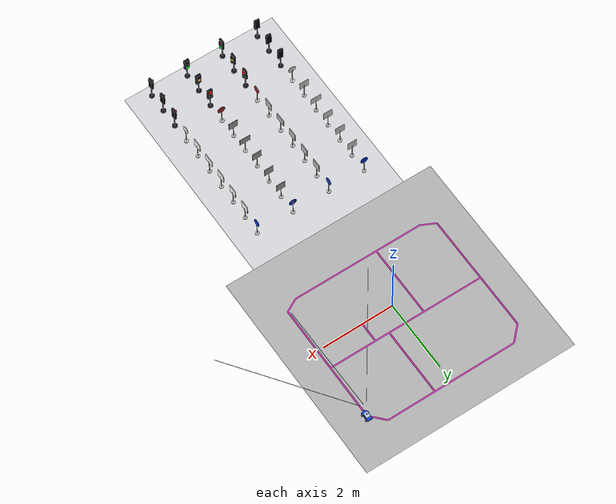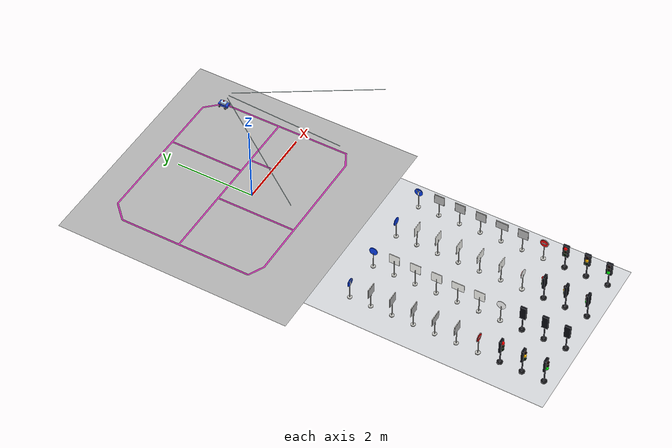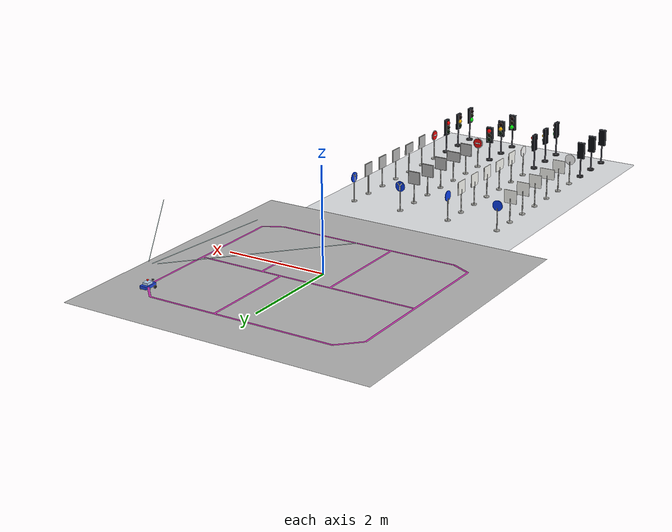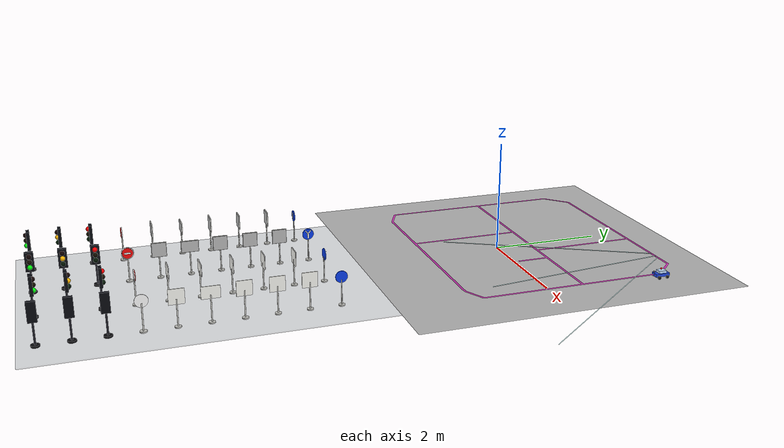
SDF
<?xml version='1.0' encoding='utf-8'?>
<sdf version="1.7">
  <world name="autonomous_map_3d_world">
    <plugin name="gazebo_ros_state" filename="libgazebo_ros_state.so">
      <update_rate>50.0</update_rate>
    </plugin>
    <scene>
      <ambient>0.82 0.82 0.82 1</ambient>
      <background>0.86 0.91 0.98 1</background>
      <shadows>0</shadows>
    </scene>
    <light name="sun" type="directional">
      <cast_shadows>1</cast_shadows>
      <pose>-0.000000 0.000000 10.000000 0.000000 -0.000000 3.141593</pose>
      <diffuse>0.8 0.8 0.8 1</diffuse>
      <specular>0.2 0.2 0.2 1</specular>
      <attenuation>
        <range>1000</range>
        <constant>0.9</constant>
        <linear>0.01</linear>
        <quadratic>0.001</quadratic>
      </attenuation>
      <direction>-0.5 0.1 -0.9</direction>
      <spot>
        <inner_angle>0</inner_angle>
        <outer_angle>0</outer_angle>
        <falloff>0</falloff>
      </spot>
    </light>
    <light name="key_light" type="directional">
      <cast_shadows>0</cast_shadows>
      <pose>-0.000000 0.000000 6.000000 0.000000 -0.000000 3.141593</pose>
      <diffuse>0.92 0.92 0.9 1</diffuse>
      <specular>0.15 0.15 0.15 1</specular>
      <direction>-0.3 0.35 -1</direction>
      <attenuation>
        <range>10</range>
      </attenuation>
      <spot>
        <inner_angle>0</inner_angle>
        <outer_angle>0</outer_angle>
        <falloff>0</falloff>
      </spot>
    </light>
    <light name="fill_light" type="directional">
      <cast_shadows>0</cast_shadows>
      <pose>-0.000000 0.000000 6.000000 0.000000 -0.000000 3.141593</pose>
      <diffuse>0.42 0.46 0.52 1</diffuse>
      <specular>0.05 0.05 0.05 1</specular>
      <direction>0.3 -0.2 -1</direction>
      <attenuation>
        <range>10</range>
      </attenuation>
      <spot>
        <inner_angle>0</inner_angle>
        <outer_angle>0</outer_angle>
        <falloff>0</falloff>
      </spot>
    </light>
    <model name="autonomous_map_3d_mirror_x">
      <static>1</static>
      <link name="map_link">
        <visual name="textured_map_visual">
          <geometry>
            <mesh>
              <uri>file:///home/quocbao/my_robot_vision_full_project/my_robot_vision/models/autonomous_map_3d_mirror_x/meshes/autonomous_map_3d_mirror_x.dae</uri>
            </mesh>
          </geometry>
        </visual>
        <collision name="floor_collision">
          <pose>0 0 -0.01 0 -0 0</pose>
          <geometry>
            <box>
              <size>6 6 0.02</size>
            </box>
          </geometry>
          <max_contacts>10</max_contacts>
          <surface>
            <contact>
              <ode />
            </contact>
            <bounce />
            <friction>
              <torsional>
                <ode />
              </torsional>
              <ode />
            </friction>
          </surface>
        </collision>
        <self_collide>0</self_collide>
        <enable_wind>0</enable_wind>
        <kinematic>0</kinematic>
      </link>
      <pose>0 0.3 0 0 -0 3.141593</pose>
    </model>
    <model name="flat_magenta_parking_stub_stop_route_overlay">
      <static>1</static>
      <link name="route_preview_link">
        <visual name="route_preview_mesh_visual">
          <geometry>
            <mesh>
              <uri>file:///home/quocbao/my_robot_vision_full_project/my_robot_vision/route_drawing_lab/outputs/session_20260608_132843/runtime_visual_frame_overlay/flat_magenta_parking_stub_stop_runtime_route_overlay.dae</uri>
            </mesh>
          </geometry>
          <material>
            <script>
              <name>Gazebo/RoutePreviewMagenta</name>
            </script>
            <ambient>1 0 1 1</ambient>
            <diffuse>1 0 1 1</diffuse>
            <emissive>0.8 0 0.8 1</emissive>
          </material>
          <cast_shadows>0</cast_shadows>
        </visual>
        <self_collide>0</self_collide>
        <enable_wind>0</enable_wind>
        <kinematic>1</kinematic>
      </link>
      <pose>0 0 0 0 0 0</pose>
    </model>
    <model name="sign_palette_floor_outside_map">
      <static>1</static>
      <link name="palette_floor_link">
        <visual name="palette_floor_visual">
          <geometry>
            <box>
              <size>4.400000 5.880000 0.020000</size>
            </box>
          </geometry>
          <material>
            <ambient>0.78 0.80 0.82 0.55</ambient>
            <diffuse>0.78 0.80 0.82 0.55</diffuse>
          </material>
        </visual>
        <collision name="palette_floor_collision">
          <geometry>
            <box>
              <size>4.400000 5.880000 0.020000</size>
            </box>
          </geometry>
        </collision>
      </link>
      <pose>0.000000 -5.615000 -0.020000 0.000000 0.000000 0.000000</pose>
    </model>
    <include>
      <name>palette_arrow_00_yaw_000</name>
      <uri>model://road_sign_arrow</uri>
      <pose>-1.575000 -3.500000 0.000000 0.000000 -0.000000 0.000000</pose>
    </include>
    <include>
      <name>palette_arrow_01_yaw_090</name>
      <uri>model://road_sign_arrow</uri>
      <pose>-0.525000 -3.500000 0.000000 0.000000 -0.000000 1.570796</pose>
    </include>
    <include>
      <name>palette_arrow_02_yaw_180</name>
      <uri>model://road_sign_arrow</uri>
      <pose>0.525000 -3.500000 0.000000 0.000000 -0.000000 3.141593</pose>
    </include>
    <include>
      <name>palette_arrow_03_yaw_270</name>
      <uri>model://road_sign_arrow</uri>
      <pose>1.575000 -3.500000 0.000000 0.000000 -0.000000 -1.570796</pose>
    </include>
    <include>
      <name>palette_go_straight_00_yaw_000</name>
      <uri>model://road_sign_go_straight</uri>
      <pose>-1.575000 -4.030000 0.000000 0.000000 -0.000000 0.000000</pose>
    </include>
    <include>
      <name>palette_go_straight_01_yaw_090</name>
      <uri>model://road_sign_go_straight</uri>
      <pose>-0.525000 -4.030000 0.000000 0.000000 -0.000000 1.570796</pose>
    </include>
    <include>
      <name>palette_go_straight_02_yaw_180</name>
      <uri>model://road_sign_go_straight</uri>
      <pose>0.525000 -4.030000 0.000000 0.000000 -0.000000 3.141593</pose>
    </include>
    <include>
      <name>palette_go_straight_03_yaw_270</name>
      <uri>model://road_sign_go_straight</uri>
      <pose>1.575000 -4.030000 0.000000 0.000000 -0.000000 -1.570796</pose>
    </include>
    <include>
      <name>palette_turn_left_00_yaw_000</name>
      <uri>model://road_sign_turn_left</uri>
      <pose>-1.575000 -4.560000 0.000000 0.000000 -0.000000 0.000000</pose>
    </include>
    <include>
      <name>palette_turn_left_01_yaw_090</name>
      <uri>model://road_sign_turn_left</uri>
      <pose>-0.525000 -4.560000 0.000000 0.000000 -0.000000 1.570796</pose>
    </include>
    <include>
      <name>palette_turn_left_02_yaw_180</name>
      <uri>model://road_sign_turn_left</uri>
      <pose>0.525000 -4.560000 0.000000 0.000000 -0.000000 3.141593</pose>
    </include>
    <include>
      <name>palette_turn_left_03_yaw_270</name>
      <uri>model://road_sign_turn_left</uri>
      <pose>1.575000 -4.560000 0.000000 0.000000 -0.000000 -1.570796</pose>
    </include>
    <include>
      <name>palette_turn_right_00_yaw_000</name>
      <uri>model://road_sign_turn_right</uri>
      <pose>-1.575000 -5.090000 0.000000 0.000000 -0.000000 0.000000</pose>
    </include>
    <include>
      <name>palette_turn_right_01_yaw_090</name>
      <uri>model://road_sign_turn_right</uri>
      <pose>-0.525000 -5.090000 0.000000 0.000000 -0.000000 1.570796</pose>
    </include>
    <include>
      <name>palette_turn_right_02_yaw_180</name>
      <uri>model://road_sign_turn_right</uri>
      <pose>0.525000 -5.090000 0.000000 0.000000 -0.000000 3.141593</pose>
    </include>
    <include>
      <name>palette_turn_right_03_yaw_270</name>
      <uri>model://road_sign_turn_right</uri>
      <pose>1.575000 -5.090000 0.000000 0.000000 -0.000000 -1.570796</pose>
    </include>
    <include>
      <name>palette_parking_00_yaw_000</name>
      <uri>model://road_sign_parking</uri>
      <pose>-1.575000 -5.620000 0.000000 0.000000 -0.000000 0.000000</pose>
    </include>
    <include>
      <name>palette_parking_01_yaw_090</name>
      <uri>model://road_sign_parking</uri>
      <pose>-0.525000 -5.620000 0.000000 0.000000 -0.000000 1.570796</pose>
    </include>
    <include>
      <name>palette_parking_02_yaw_180</name>
      <uri>model://road_sign_parking</uri>
      <pose>0.525000 -5.620000 0.000000 0.000000 -0.000000 3.141593</pose>
    </include>
    <include>
      <name>palette_parking_03_yaw_270</name>
      <uri>model://road_sign_parking</uri>
      <pose>1.575000 -5.620000 0.000000 0.000000 -0.000000 -1.570796</pose>
    </include>
    <include>
      <name>palette_speed_limit_00_yaw_000</name>
      <uri>model://road_sign_speed_limit</uri>
      <pose>-1.575000 -6.150000 0.000000 0.000000 -0.000000 0.000000</pose>
    </include>
    <include>
      <name>palette_speed_limit_01_yaw_090</name>
      <uri>model://road_sign_speed_limit</uri>
      <pose>-0.525000 -6.150000 0.000000 0.000000 -0.000000 1.570796</pose>
    </include>
    <include>
      <name>palette_speed_limit_02_yaw_180</name>
      <uri>model://road_sign_speed_limit</uri>
      <pose>0.525000 -6.150000 0.000000 0.000000 -0.000000 3.141593</pose>
    </include>
    <include>
      <name>palette_speed_limit_03_yaw_270</name>
      <uri>model://road_sign_speed_limit</uri>
      <pose>1.575000 -6.150000 0.000000 0.000000 -0.000000 -1.570796</pose>
    </include>
    <include>
      <name>palette_stop_00_yaw_000</name>
      <uri>model://road_sign_stop</uri>
      <pose>-1.575000 -6.680000 0.000000 0.000000 -0.000000 0.000000</pose>
    </include>
    <include>
      <name>palette_stop_01_yaw_090</name>
      <uri>model://road_sign_stop</uri>
      <pose>-0.525000 -6.680000 0.000000 0.000000 -0.000000 1.570796</pose>
    </include>
    <include>
      <name>palette_stop_02_yaw_180</name>
      <uri>model://road_sign_stop</uri>
      <pose>0.525000 -6.680000 0.000000 0.000000 -0.000000 3.141593</pose>
    </include>
    <include>
      <name>palette_stop_03_yaw_270</name>
      <uri>model://road_sign_stop</uri>
      <pose>1.575000 -6.680000 0.000000 0.000000 -0.000000 -1.570796</pose>
    </include>
    <include>
      <name>palette_traffic_light_red_00_yaw_000</name>
      <uri>model://traffic_light_toy_red</uri>
      <pose>-1.575000 -7.210000 0.000000 0.000000 -0.000000 0.000000</pose>
    </include>
    <include>
      <name>palette_traffic_light_red_01_yaw_090</name>
      <uri>model://traffic_light_toy_red</uri>
      <pose>-0.525000 -7.210000 0.000000 0.000000 -0.000000 1.570796</pose>
    </include>
    <include>
      <name>palette_traffic_light_red_02_yaw_180</name>
      <uri>model://traffic_light_toy_red</uri>
      <pose>0.525000 -7.210000 0.000000 0.000000 -0.000000 3.141593</pose>
    </include>
    <include>
      <name>palette_traffic_light_red_03_yaw_270</name>
      <uri>model://traffic_light_toy_red</uri>
      <pose>1.575000 -7.210000 0.000000 0.000000 -0.000000 -1.570796</pose>
    </include>
    <include>
      <name>palette_traffic_light_yellow_00_yaw_000</name>
      <uri>model://traffic_light_toy_yellow</uri>
      <pose>-1.575000 -7.740000 0.000000 0.000000 -0.000000 0.000000</pose>
    </include>
    <include>
      <name>palette_traffic_light_yellow_01_yaw_090</name>
      <uri>model://traffic_light_toy_yellow</uri>
      <pose>-0.525000 -7.740000 0.000000 0.000000 -0.000000 1.570796</pose>
    </include>
    <include>
      <name>palette_traffic_light_yellow_02_yaw_180</name>
      <uri>model://traffic_light_toy_yellow</uri>
      <pose>0.525000 -7.740000 0.000000 0.000000 -0.000000 3.141593</pose>
    </include>
    <include>
      <name>palette_traffic_light_yellow_03_yaw_270</name>
      <uri>model://traffic_light_toy_yellow</uri>
      <pose>1.575000 -7.740000 0.000000 0.000000 -0.000000 -1.570796</pose>
    </include>
    <include>
      <name>palette_traffic_light_green_00_yaw_000</name>
      <uri>model://traffic_light_toy_green</uri>
      <pose>-1.575000 -8.270000 0.000000 0.000000 -0.000000 0.000000</pose>
    </include>
    <include>
      <name>palette_traffic_light_green_01_yaw_090</name>
      <uri>model://traffic_light_toy_green</uri>
      <pose>-0.525000 -8.270000 0.000000 0.000000 -0.000000 1.570796</pose>
    </include>
    <include>
      <name>palette_traffic_light_green_02_yaw_180</name>
      <uri>model://traffic_light_toy_green</uri>
      <pose>0.525000 -8.270000 0.000000 0.000000 -0.000000 3.141593</pose>
    </include>
    <include>
      <name>palette_traffic_light_green_03_yaw_270</name>
      <uri>model://traffic_light_toy_green</uri>
      <pose>1.575000 -8.270000 0.000000 0.000000 -0.000000 -1.570796</pose>
    </include>
    <model name="track_preview_car">
      <static>0</static>
      <self_collide>0</self_collide>
      <allow_auto_disable>0</allow_auto_disable>
      <link name="body">
        <gravity>1</gravity>
        <inertial>
          <mass>1</mass>
          <inertia>
            <ixx>0.01</ixx>
            <iyy>0.01</iyy>
            <izz>0.01</izz>
            <ixy>0</ixy>
            <ixz>0</ixz>
            <iyz>0</iyz>
          </inertia>
          <pose>0 0 0 0 -0 0</pose>
        </inertial>
        <visual name="chassis_visual">
          <pose>0 0 0.065 0 -0 0</pose>
          <geometry>
            <box>
              <size>0.26 0.14 0.055</size>
            </box>
          </geometry>
          <material>
            <ambient>0.08 0.2 0.7 1</ambient>
            <diffuse>0.12 0.28 0.88 1</diffuse>
            <specular>0.1 0.1 0.1 1</specular>
          </material>
        </visual>
        <visual name="roof_visual">
          <pose>-0.005 0 0.115 0 -0 0</pose>
          <geometry>
            <box>
              <size>0.14 0.105 0.045</size>
            </box>
          </geometry>
          <material>
            <ambient>0.65 0.78 0.95 0.92</ambient>
            <diffuse>0.75 0.86 0.98 0.92</diffuse>
            <specular>0.1 0.1 0.1 1</specular>
          </material>
        </visual>
        <visual name="front_marker_visual">
          <pose>0.105 0 0.083 0 -0 0</pose>
          <geometry>
            <box>
              <size>0.025 0.075 0.018</size>
            </box>
          </geometry>
          <material>
            <ambient>1 0.85 0.2 1</ambient>
            <diffuse>1 0.88 0.25 1</diffuse>
            <specular>0.05 0.05 0.05 1</specular>
          </material>
        </visual>
        <visual name="camera_lens_visual">
          <pose>0.138 0 0.126 0 -0 0</pose>
          <geometry>
            <box>
              <size>0.016 0.04 0.022</size>
            </box>
          </geometry>
          <material>
            <ambient>0.02 0.02 0.025 1</ambient>
            <diffuse>0.04 0.04 0.05 1</diffuse>
            <specular>0.05 0.05 0.05 1</specular>
          </material>
        </visual>
        <visual name="camera_view_left_ray_visual">
          <pose>1.67 1.15 0.335 -0 0.0505 0.6109</pose>
          <geometry>
            <box>
              <size>3.68 0.008 0.008</size>
            </box>
          </geometry>
          <material>
            <ambient>0.85 1 1 0.82</ambient>
            <diffuse>0.85 1 1 0.82</diffuse>
            <emissive>0.2 0.55 0.75 1</emissive>
          </material>
        </visual>
        <visual name="camera_view_center_ray_visual">
          <pose>1.67 0 0.335 0 0.0555 0</pose>
          <geometry>
            <box>
              <size>3.0647 0.008 0.008</size>
            </box>
          </geometry>
          <material>
            <ambient>0.85 1 1 0.82</ambient>
            <diffuse>0.85 1 1 0.82</diffuse>
            <emissive>0.2 0.55 0.75 1</emissive>
          </material>
        </visual>
        <visual name="camera_view_right_ray_visual">
          <pose>1.67 -1.15 0.335 0 0.0505 -0.6109</pose>
          <geometry>
            <box>
              <size>3.68 0.008 0.008</size>
            </box>
          </geometry>
          <material>
            <ambient>0.85 1 1 0.82</ambient>
            <diffuse>0.85 1 1 0.82</diffuse>
            <emissive>0.2 0.55 0.75 1</emissive>
          </material>
        </visual>
        <visual name="debug_origin_marker_visual">
          <pose>0 0 0.165 0 -0 0</pose>
          <geometry>
            <sphere>
              <radius>0.018</radius>
            </sphere>
          </geometry>
          <material>
            <ambient>1 0.02 0.02 1</ambient>
            <diffuse>1 0.04 0.04 1</diffuse>
            <specular>0.08 0.08 0.08 1</specular>
          </material>
        </visual>
        <visual name="debug_ground_origin_visual">
          <pose>0 0 -0.017 0 -0 0</pose>
          <geometry>
            <cylinder>
              <radius>0.018</radius>
              <length>0.004</length>
            </cylinder>
          </geometry>
          <material>
            <ambient>1 0.02 0.02 1</ambient>
            <diffuse>1 0.04 0.04 1</diffuse>
            <specular>0.08 0.08 0.08 1</specular>
          </material>
        </visual>
        <visual name="debug_ground_footprint_front_visual">
          <pose>0.165 0 -0.017 0 -0 0</pose>
          <geometry>
            <box>
              <size>0.008 0.238 0.004</size>
            </box>
          </geometry>
          <material>
            <ambient>0 0.7 1 1</ambient>
            <diffuse>0.05 0.86 1 1</diffuse>
            <specular>0.02 0.02 0.02 1</specular>
          </material>
        </visual>
        <visual name="debug_ground_footprint_rear_visual">
          <pose>-0.145 0 -0.017 0 -0 0</pose>
          <geometry>
            <box>
              <size>0.008 0.238 0.004</size>
            </box>
          </geometry>
          <material>
            <ambient>0 0.7 1 1</ambient>
            <diffuse>0.05 0.86 1 1</diffuse>
            <specular>0.02 0.02 0.02 1</specular>
          </material>
        </visual>
        <visual name="debug_ground_footprint_left_visual">
          <pose>0.01 0.115 -0.017 0 -0 0</pose>
          <geometry>
            <box>
              <size>0.318 0.008 0.004</size>
            </box>
          </geometry>
          <material>
            <ambient>0 0.7 1 1</ambient>
            <diffuse>0.05 0.86 1 1</diffuse>
            <specular>0.02 0.02 0.02 1</specular>
          </material>
        </visual>
        <visual name="debug_ground_footprint_right_visual">
          <pose>0.01 -0.115 -0.017 0 -0 0</pose>
          <geometry>
            <box>
              <size>0.318 0.008 0.004</size>
            </box>
          </geometry>
          <material>
            <ambient>0 0.7 1 1</ambient>
            <diffuse>0.05 0.86 1 1</diffuse>
            <specular>0.02 0.02 0.02 1</specular>
          </material>
        </visual>
        <visual name="rear_left_dummy_wheel_visual">
          <pose>-0.08 0.085 0.032 1.5708 -0 0</pose>
          <geometry>
            <cylinder>
              <radius>0.028</radius>
              <length>0.016</length>
            </cylinder>
          </geometry>
          <material>
            <ambient>0.03 0.03 0.03 1</ambient>
            <diffuse>0.07 0.07 0.07 1</diffuse>
            <specular>0.02 0.02 0.02 1</specular>
          </material>
        </visual>
        <visual name="rear_right_dummy_wheel_visual">
          <pose>-0.08 -0.085 0.032 1.5708 -0 0</pose>
          <geometry>
            <cylinder>
              <radius>0.028</radius>
              <length>0.016</length>
            </cylinder>
          </geometry>
          <material>
            <ambient>0.03 0.03 0.03 1</ambient>
            <diffuse>0.07 0.07 0.07 1</diffuse>
            <specular>0.02 0.02 0.02 1</specular>
          </material>
        </visual>
        <collision name="rear_left_caster_collision">
          <pose>-0.095 0.072 0.026 0 -0 0</pose>
          <geometry>
            <sphere>
              <radius>0.024</radius>
            </sphere>
          </geometry>
          <surface>
            <friction>
              <ode>
                <mu>0.05</mu>
                <mu2>0.05</mu2>
              </ode>
              <torsional>
                <ode />
              </torsional>
            </friction>
            <contact>
              <ode />
            </contact>
            <bounce />
          </surface>
          <max_contacts>10</max_contacts>
        </collision>
        <collision name="rear_right_caster_collision">
          <pose>-0.095 -0.072 0.026 0 -0 0</pose>
          <geometry>
            <sphere>
              <radius>0.024</radius>
            </sphere>
          </geometry>
          <surface>
            <friction>
              <ode>
                <mu>0.05</mu>
                <mu2>0.05</mu2>
              </ode>
              <torsional>
                <ode />
              </torsional>
            </friction>
            <contact>
              <ode />
            </contact>
            <bounce />
          </surface>
          <max_contacts>10</max_contacts>
        </collision>
        <collision name="body_collision">
          <pose>0 0 0.065 0 -0 0</pose>
          <geometry>
            <box>
              <size>0.26 0.14 0.05</size>
            </box>
          </geometry>
          <max_contacts>10</max_contacts>
          <surface>
            <contact>
              <ode />
            </contact>
            <bounce />
            <friction>
              <torsional>
                <ode />
              </torsional>
              <ode />
            </friction>
          </surface>
        </collision>
        <sensor name="front_camera" type="camera">
          <pose>0.14 0 0.42 0 0.18 0</pose>
          <always_on>1</always_on>
          <update_rate>30</update_rate>
          <visualize>0</visualize>
          <camera>
            <horizontal_fov>2.45</horizontal_fov>
            <image>
              <width>960</width>
              <height>540</height>
              <format>R8G8B8</format>
            </image>
            <clip>
              <near>0.02</near>
              <far>6</far>
            </clip>
          </camera>
          <plugin name="front_camera_controller" filename="libgazebo_ros_camera.so">
            <ros>
              <namespace>/track_preview_car</namespace>
              <remapping>image_raw:=image_raw</remapping>
              <remapping>camera_info:=camera_info</remapping>
            </ros>
            <camera_name>camera</camera_name>
            <frame_name>track_preview_car/front_camera</frame_name>
          </plugin>
        </sensor>
        <self_collide>0</self_collide>
        <enable_wind>0</enable_wind>
        <kinematic>0</kinematic>
      </link>
      <link name="left_wheel">
        <gravity>1</gravity>
        <pose>0.08 0.088 0.032 0 -0 0</pose>
        <inertial>
          <mass>0.08</mass>
          <inertia>
            <ixx>5e-05</ixx>
            <iyy>8e-05</iyy>
            <izz>5e-05</izz>
            <ixy>0</ixy>
            <ixz>0</ixz>
            <iyz>0</iyz>
          </inertia>
          <pose>0 0 0 0 -0 0</pose>
        </inertial>
        <visual name="left_wheel_visual">
          <pose>0 0 0 1.5708 -0 0</pose>
          <geometry>
            <cylinder>
              <radius>0.03</radius>
              <length>0.02</length>
            </cylinder>
          </geometry>
          <material>
            <ambient>0.03 0.03 0.03 1</ambient>
            <diffuse>0.07 0.07 0.07 1</diffuse>
            <specular>0.02 0.02 0.02 1</specular>
          </material>
        </visual>
        <collision name="left_wheel_collision">
          <pose>0 0 0 1.5708 -0 0</pose>
          <geometry>
            <cylinder>
              <radius>0.03</radius>
              <length>0.02</length>
            </cylinder>
          </geometry>
          <surface>
            <friction>
              <ode>
                <mu>1.2</mu>
                <mu2>1.2</mu2>
              </ode>
              <torsional>
                <ode />
              </torsional>
            </friction>
            <contact>
              <ode />
            </contact>
            <bounce />
          </surface>
          <max_contacts>10</max_contacts>
        </collision>
        <self_collide>0</self_collide>
        <enable_wind>0</enable_wind>
        <kinematic>0</kinematic>
      </link>
      <link name="right_wheel">
        <gravity>1</gravity>
        <pose>0.08 -0.088 0.032 0 -0 0</pose>
        <inertial>
          <mass>0.08</mass>
          <inertia>
            <ixx>5e-05</ixx>
            <iyy>8e-05</iyy>
            <izz>5e-05</izz>
            <ixy>0</ixy>
            <ixz>0</ixz>
            <iyz>0</iyz>
          </inertia>
          <pose>0 0 0 0 -0 0</pose>
        </inertial>
        <visual name="right_wheel_visual">
          <pose>0 0 0 1.5708 -0 0</pose>
          <geometry>
            <cylinder>
              <radius>0.03</radius>
              <length>0.02</length>
            </cylinder>
          </geometry>
          <material>
            <ambient>0.03 0.03 0.03 1</ambient>
            <diffuse>0.07 0.07 0.07 1</diffuse>
            <specular>0.02 0.02 0.02 1</specular>
          </material>
        </visual>
        <collision name="right_wheel_collision">
          <pose>0 0 0 1.5708 -0 0</pose>
          <geometry>
            <cylinder>
              <radius>0.03</radius>
              <length>0.02</length>
            </cylinder>
          </geometry>
          <surface>
            <friction>
              <ode>
                <mu>1.2</mu>
                <mu2>1.2</mu2>
              </ode>
              <torsional>
                <ode />
              </torsional>
            </friction>
            <contact>
              <ode />
            </contact>
            <bounce />
          </surface>
          <max_contacts>10</max_contacts>
        </collision>
        <self_collide>0</self_collide>
        <enable_wind>0</enable_wind>
        <kinematic>0</kinematic>
      </link>
      <joint name="left_wheel_joint" type="revolute">
        <parent>body</parent>
        <child>left_wheel</child>
        <axis>
          <xyz>0 1 0</xyz>
          <limit>
            <lower>-1e+16</lower>
            <upper>1e+16</upper>
          </limit>
          <dynamics>
            <spring_reference>0</spring_reference>
            <spring_stiffness>0</spring_stiffness>
          </dynamics>
        </axis>
      </joint>
      <joint name="right_wheel_joint" type="revolute">
        <parent>body</parent>
        <child>right_wheel</child>
        <axis>
          <xyz>0 1 0</xyz>
          <limit>
            <lower>-1e+16</lower>
            <upper>1e+16</upper>
          </limit>
          <dynamics>
            <spring_reference>0</spring_reference>
            <spring_stiffness>0</spring_stiffness>
          </dynamics>
        </axis>
      </joint>
      <plugin name="track_preview_car_diff_drive" filename="libgazebo_ros_diff_drive.so">
        <ros>
          <namespace>/track_preview_car</namespace>
          <remapping>cmd_vel:=cmd_vel</remapping>
          <remapping>odom:=odom</remapping>
        </ros>
        <left_joint>left_wheel_joint</left_joint>
        <right_joint>right_wheel_joint</right_joint>
        <wheel_separation>0.176</wheel_separation>
        <wheel_diameter>0.06</wheel_diameter>
        <max_wheel_torque>2.0</max_wheel_torque>
        <max_wheel_acceleration>8.0</max_wheel_acceleration>
        <odometry_frame>odom</odometry_frame>
        <robot_base_frame>body</robot_base_frame>
        <publish_odom>1</publish_odom>
        <publish_odom_tf>0</publish_odom_tf>
        <publish_wheel_tf>0</publish_wheel_tf>
        <update_rate>50</update_rate>
      </plugin>
      <pose>2.179688 2.104687 -0.002000 0.000000 -0.000000 -1.570796</pose>
    </model>
    <physics name="default_physics" default="1" type="ode">
      <max_step_size>0.001</max_step_size>
      <real_time_update_rate>1000</real_time_update_rate>
      <real_time_factor>1</real_time_factor>
    </physics>
    <gui fullscreen="0">
      <camera name="user_camera">
        <pose>0.550000 -7.250000 6.700000 0.000000 0.720000 1.570796</pose>
        <view_controller>orbit</view_controller>
        <projection_type>perspective</projection_type>
      </camera>
    </gui>
    <gravity>0 0 -9.8</gravity>
    <magnetic_field>6e-06 2.3e-05 -4.2e-05</magnetic_field>
    <atmosphere type="adiabatic" />
    <wind />
    <spherical_coordinates>
      <surface_model>EARTH_WGS84</surface_model>
      <latitude_deg>0</latitude_deg>
      <longitude_deg>0</longitude_deg>
      <elevation>0</elevation>
      <heading_deg>0</heading_deg>
    </spherical_coordinates>
  </world>
</sdf>

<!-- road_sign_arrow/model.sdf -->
<sdf version="1.6">
  <model name="road_sign_arrow">
    <static>true</static>
    <link name="arrow_sign_link">
      <visual name="base_visual">
        <pose>0 0 0.010 0 0 0</pose>
        <geometry>
          <cylinder>
            <radius>0.055</radius>
            <length>0.020</length>
          </cylinder>
        </geometry>
        <material>
          <ambient>0.72 0.72 0.70 1</ambient>
          <diffuse>0.78 0.78 0.76 1</diffuse>
        </material>
      </visual>
      <visual name="pole_visual">
        <pose>0 0 0.230 0 0 0</pose>
        <geometry>
          <cylinder>
            <radius>0.010</radius>
            <length>0.440</length>
          </cylinder>
        </geometry>
        <material>
          <ambient>0.72 0.72 0.70 1</ambient>
          <diffuse>0.82 0.82 0.80 1</diffuse>
        </material>
      </visual>
      <visual name="blue_plate_visual">
        <pose>0 -0.004 0.500 1.5708 0 0</pose>
        <geometry>
          <cylinder>
            <radius>0.102</radius>
            <length>0.014</length>
          </cylinder>
        </geometry>
        <material>
          <ambient>0.02 0.18 0.68 1</ambient>
          <diffuse>0.03 0.24 0.92 1</diffuse>
        </material>
      </visual>
      <visual name="arrow_stem_visual">
        <pose>0 -0.018 0.475 0 0 0</pose>
        <geometry>
          <box>
            <size>0.030 0.006 0.105</size>
          </box>
        </geometry>
        <material>
          <ambient>1.0 1.0 1.0 1</ambient>
          <diffuse>1.0 1.0 1.0 1</diffuse>
        </material>
      </visual>
      <visual name="arrow_head_left_visual">
        <pose>-0.028 -0.020 0.545 0 -0.75 0</pose>
        <geometry>
          <box>
            <size>0.020 0.006 0.075</size>
          </box>
        </geometry>
        <material>
          <ambient>1.0 1.0 1.0 1</ambient>
          <diffuse>1.0 1.0 1.0 1</diffuse>
        </material>
      </visual>
      <visual name="arrow_head_right_visual">
        <pose>0.028 -0.020 0.545 0 0.75 0</pose>
        <geometry>
          <box>
            <size>0.020 0.006 0.075</size>
          </box>
        </geometry>
        <material>
          <ambient>1.0 1.0 1.0 1</ambient>
          <diffuse>1.0 1.0 1.0 1</diffuse>
        </material>
      </visual>
    </link>
  </model>
</sdf>

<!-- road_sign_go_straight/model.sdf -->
<sdf version="1.6">
  <model name="road_sign_go_straight">
    <static>true</static>
    <link name="sign_link">
      <visual name="base_visual">
        <pose>0 0 0.010 0 0 0</pose>
        <geometry>
          <cylinder>
            <radius>0.055</radius>
            <length>0.020</length>
          </cylinder>
        </geometry>
        <material>
          <ambient>0.72 0.72 0.70 1</ambient>
          <diffuse>0.78 0.78 0.76 1</diffuse>
        </material>
      </visual>
      <visual name="pole_visual">
        <pose>0 0 0.245 0 0 0</pose>
        <geometry>
          <cylinder>
            <radius>0.011</radius>
            <length>0.470</length>
          </cylinder>
        </geometry>
        <material>
          <ambient>0.72 0.72 0.70 1</ambient>
          <diffuse>0.82 0.82 0.80 1</diffuse>
        </material>
      </visual>
      <visual name="back_plate_visual">
        <pose>0 0 0.520 0 0 0</pose>
        <geometry>
          <box>
            <size>0.260 0.014 0.260</size>
          </box>
        </geometry>
        <material>
          <ambient>0.96 0.96 0.94 1</ambient>
          <diffuse>0.98 0.98 0.96 1</diffuse>
        </material>
      </visual>
      <visual name="sign_face_visual">
        <pose>0 -0.011 0.520 0 0 0</pose>
        <geometry>
          <box>
            <size>0.246 0.004 0.246</size>
          </box>
        </geometry>
        <material>
          <script>
            <uri>model://road_sign_go_straight/materials/scripts</uri>
            <uri>model://road_sign_go_straight/materials/textures</uri>
            <name>RoadSign/GoStraight</name>
          </script>
        </material>
      </visual>
    </link>
  </model>
</sdf>

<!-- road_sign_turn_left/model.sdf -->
<sdf version="1.6">
  <model name="road_sign_turn_left">
    <static>true</static>
    <link name="sign_link">
      <visual name="base_visual">
        <pose>0 0 0.010 0 0 0</pose>
        <geometry>
          <cylinder>
            <radius>0.055</radius>
            <length>0.020</length>
          </cylinder>
        </geometry>
        <material>
          <ambient>0.72 0.72 0.70 1</ambient>
          <diffuse>0.78 0.78 0.76 1</diffuse>
        </material>
      </visual>
      <visual name="pole_visual">
        <pose>0 0 0.245 0 0 0</pose>
        <geometry>
          <cylinder>
            <radius>0.011</radius>
            <length>0.470</length>
          </cylinder>
        </geometry>
        <material>
          <ambient>0.72 0.72 0.70 1</ambient>
          <diffuse>0.82 0.82 0.80 1</diffuse>
        </material>
      </visual>
      <visual name="back_plate_visual">
        <pose>0 0 0.520 0 0 0</pose>
        <geometry>
          <box>
            <size>0.260 0.014 0.260</size>
          </box>
        </geometry>
        <material>
          <ambient>0.96 0.96 0.94 1</ambient>
          <diffuse>0.98 0.98 0.96 1</diffuse>
        </material>
      </visual>
      <visual name="sign_face_visual">
        <pose>0 -0.011 0.520 0 0 0</pose>
        <geometry>
          <box>
            <size>0.246 0.004 0.246</size>
          </box>
        </geometry>
        <material>
          <script>
            <uri>model://road_sign_turn_left/materials/scripts</uri>
            <uri>model://road_sign_turn_left/materials/textures</uri>
            <name>RoadSign/TurnLeft</name>
          </script>
        </material>
      </visual>
    </link>
  </model>
</sdf>

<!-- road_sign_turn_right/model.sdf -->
<sdf version="1.6">
  <model name="road_sign_turn_right">
    <static>true</static>
    <link name="sign_link">
      <visual name="base_visual">
        <pose>0 0 0.010 0 0 0</pose>
        <geometry>
          <cylinder>
            <radius>0.055</radius>
            <length>0.020</length>
          </cylinder>
        </geometry>
        <material>
          <ambient>0.72 0.72 0.70 1</ambient>
          <diffuse>0.78 0.78 0.76 1</diffuse>
        </material>
      </visual>
      <visual name="pole_visual">
        <pose>0 0 0.245 0 0 0</pose>
        <geometry>
          <cylinder>
            <radius>0.011</radius>
            <length>0.470</length>
          </cylinder>
        </geometry>
        <material>
          <ambient>0.72 0.72 0.70 1</ambient>
          <diffuse>0.82 0.82 0.80 1</diffuse>
        </material>
      </visual>
      <visual name="back_plate_visual">
        <pose>0 0 0.520 0 0 0</pose>
        <geometry>
          <box>
            <size>0.260 0.014 0.260</size>
          </box>
        </geometry>
        <material>
          <ambient>0.96 0.96 0.94 1</ambient>
          <diffuse>0.98 0.98 0.96 1</diffuse>
        </material>
      </visual>
      <visual name="sign_face_visual">
        <pose>0 -0.011 0.520 0 0 0</pose>
        <geometry>
          <box>
            <size>0.246 0.004 0.246</size>
          </box>
        </geometry>
        <material>
          <script>
            <uri>model://road_sign_turn_right/materials/scripts</uri>
            <uri>model://road_sign_turn_right/materials/textures</uri>
            <name>RoadSign/TurnRight</name>
          </script>
        </material>
      </visual>
    </link>
  </model>
</sdf>

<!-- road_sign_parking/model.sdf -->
<sdf version="1.6">
  <model name="road_sign_parking">
    <static>true</static>
    <link name="sign_link">
      <visual name="base_visual">
        <pose>0 0 0.010 0 0 0</pose>
        <geometry>
          <cylinder>
            <radius>0.055</radius>
            <length>0.020</length>
          </cylinder>
        </geometry>
        <material>
          <ambient>0.72 0.72 0.70 1</ambient>
          <diffuse>0.78 0.78 0.76 1</diffuse>
        </material>
      </visual>
      <visual name="pole_visual">
        <pose>0 0 0.245 0 0 0</pose>
        <geometry>
          <cylinder>
            <radius>0.011</radius>
            <length>0.470</length>
          </cylinder>
        </geometry>
        <material>
          <ambient>0.72 0.72 0.70 1</ambient>
          <diffuse>0.82 0.82 0.80 1</diffuse>
        </material>
      </visual>
      <visual name="back_plate_visual">
        <pose>0 0 0.520 0 0 0</pose>
        <geometry>
          <box>
            <size>0.310 0.014 0.210</size>
          </box>
        </geometry>
        <material>
          <ambient>0.96 0.96 0.94 1</ambient>
          <diffuse>0.98 0.98 0.96 1</diffuse>
        </material>
      </visual>
      <visual name="sign_face_visual">
        <pose>0 -0.011 0.520 0 0 0</pose>
        <geometry>
          <box>
            <size>0.294 0.004 0.196</size>
          </box>
        </geometry>
        <material>
          <script>
            <uri>model://road_sign_parking/materials/scripts</uri>
            <uri>model://road_sign_parking/materials/textures</uri>
            <name>RoadSign/Parking</name>
          </script>
        </material>
      </visual>
    </link>
  </model>
</sdf>

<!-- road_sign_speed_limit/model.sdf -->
<sdf version="1.6">
  <model name="road_sign_speed_limit">
    <static>true</static>
    <link name="sign_link">
      <visual name="base_visual">
        <pose>0 0 0.010 0 0 0</pose>
        <geometry>
          <cylinder>
            <radius>0.055</radius>
            <length>0.020</length>
          </cylinder>
        </geometry>
        <material>
          <ambient>0.72 0.72 0.70 1</ambient>
          <diffuse>0.78 0.78 0.76 1</diffuse>
        </material>
      </visual>
      <visual name="pole_visual">
        <pose>0 0 0.245 0 0 0</pose>
        <geometry>
          <cylinder>
            <radius>0.011</radius>
            <length>0.470</length>
          </cylinder>
        </geometry>
        <material>
          <ambient>0.72 0.72 0.70 1</ambient>
          <diffuse>0.82 0.82 0.80 1</diffuse>
        </material>
      </visual>
      <visual name="back_plate_visual">
        <pose>0 0 0.520 0 0 0</pose>
        <geometry>
          <box>
            <size>0.260 0.014 0.260</size>
          </box>
        </geometry>
        <material>
          <ambient>0.96 0.96 0.94 1</ambient>
          <diffuse>0.98 0.98 0.96 1</diffuse>
        </material>
      </visual>
      <visual name="sign_face_visual">
        <pose>0 -0.011 0.520 0 0 0</pose>
        <geometry>
          <box>
            <size>0.246 0.004 0.246</size>
          </box>
        </geometry>
        <material>
          <script>
            <uri>model://road_sign_speed_limit/materials/scripts</uri>
            <uri>model://road_sign_speed_limit/materials/textures</uri>
            <name>RoadSign/SpeedLimit</name>
          </script>
        </material>
      </visual>
    </link>
  </model>
</sdf>

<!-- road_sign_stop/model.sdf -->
<sdf version="1.6">
  <model name="road_sign_stop">
    <static>true</static>
    <link name="stop_sign_link">
      <visual name="base_visual">
        <pose>0 0 0.010 0 0 0</pose>
        <geometry>
          <cylinder>
            <radius>0.060</radius>
            <length>0.020</length>
          </cylinder>
        </geometry>
        <material>
          <ambient>0.72 0.72 0.70 1</ambient>
          <diffuse>0.78 0.78 0.76 1</diffuse>
        </material>
      </visual>
      <visual name="pole_visual">
        <pose>0 0 0.245 0 0 0</pose>
        <geometry>
          <cylinder>
            <radius>0.011</radius>
            <length>0.470</length>
          </cylinder>
        </geometry>
        <material>
          <ambient>0.72 0.72 0.70 1</ambient>
          <diffuse>0.82 0.82 0.80 1</diffuse>
        </material>
      </visual>
      <visual name="white_back_plate_visual">
        <pose>0 -0.002 0.520 1.5708 0 0</pose>
        <geometry>
          <cylinder>
            <radius>0.108</radius>
            <length>0.012</length>
          </cylinder>
        </geometry>
        <material>
          <ambient>1.0 1.0 1.0 1</ambient>
          <diffuse>1.0 1.0 1.0 1</diffuse>
        </material>
      </visual>
      <visual name="red_plate_visual">
        <pose>0 -0.010 0.520 1.5708 0 0</pose>
        <geometry>
          <cylinder>
            <radius>0.094</radius>
            <length>0.014</length>
          </cylinder>
        </geometry>
        <material>
          <ambient>0.72 0.02 0.02 1</ambient>
          <diffuse>0.95 0.04 0.04 1</diffuse>
        </material>
      </visual>
      <visual name="stop_bar_visual">
        <pose>0 -0.020 0.520 0 0 0</pose>
        <geometry>
          <box>
            <size>0.110 0.006 0.028</size>
          </box>
        </geometry>
        <material>
          <ambient>1.0 1.0 1.0 1</ambient>
          <diffuse>1.0 1.0 1.0 1</diffuse>
        </material>
      </visual>
    </link>
  </model>
</sdf>

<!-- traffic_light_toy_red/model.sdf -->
<sdf version="1.6">
  <model name="traffic_light_toy_red">
    <static>true</static>
    <link name="traffic_light_link">
      <visual name="base_visual">
        <pose>0 0 0.015 0 0 0</pose>
        <geometry>
          <cylinder>
            <radius>0.070</radius>
            <length>0.030</length>
          </cylinder>
        </geometry>
        <material>
          <ambient>0.03 0.03 0.04 1</ambient>
          <diffuse>0.04 0.04 0.05 1</diffuse>
        </material>
      </visual>
      <visual name="pole_visual">
        <pose>0 0 0.250 0 0 0</pose>
        <geometry>
          <cylinder>
            <radius>0.016</radius>
            <length>0.470</length>
          </cylinder>
        </geometry>
        <material>
          <ambient>0.08 0.08 0.10 1</ambient>
          <diffuse>0.10 0.10 0.13 1</diffuse>
        </material>
      </visual>
      <visual name="housing_visual">
        <pose>0 -0.006 0.565 0 0 0</pose>
        <geometry>
          <box>
            <size>0.145 0.055 0.340</size>
          </box>
        </geometry>
        <material>
          <ambient>0.02 0.025 0.04 1</ambient>
          <diffuse>0.03 0.035 0.06 1</diffuse>
        </material>
      </visual>
      <visual name="red_lens_visual">
        <pose>0 -0.038 0.660 0 0 0</pose>
        <geometry>
          <sphere>
            <radius>0.043</radius>
          </sphere>
        </geometry>
        <material>
          <ambient>1.0 0.0 0.0 1</ambient>
          <diffuse>1.0 0.0 0.0 1</diffuse>
          <emissive>8.0 0.0 0.0 1</emissive>
        </material>
      </visual>
      <visual name="yellow_lens_visual">
        <pose>0 -0.038 0.565 0 0 0</pose>
        <geometry>
          <sphere>
            <radius>0.043</radius>
          </sphere>
        </geometry>
        <material>
          <ambient>0.035 0.025 0.002 1</ambient>
          <diffuse>0.060 0.045 0.004 1</diffuse>
          <emissive>0.00 0.00 0.00 1</emissive>
        </material>
      </visual>
      <visual name="green_lens_visual">
        <pose>0 -0.038 0.470 0 0 0</pose>
        <geometry>
          <sphere>
            <radius>0.043</radius>
          </sphere>
        </geometry>
        <material>
          <ambient>0.002 0.040 0.004 1</ambient>
          <diffuse>0.004 0.078 0.010 1</diffuse>
          <emissive>0.00 0.00 0.00 1</emissive>
        </material>
      </visual>
    </link>
  </model>
</sdf>

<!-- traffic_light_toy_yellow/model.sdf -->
<sdf version="1.6">
  <model name="traffic_light_toy_yellow">
    <static>true</static>
    <link name="traffic_light_link">
      <visual name="base_visual">
        <pose>0 0 0.015 0 0 0</pose>
        <geometry>
          <cylinder>
            <radius>0.070</radius>
            <length>0.030</length>
          </cylinder>
        </geometry>
        <material>
          <ambient>0.03 0.03 0.04 1</ambient>
          <diffuse>0.04 0.04 0.05 1</diffuse>
        </material>
      </visual>
      <visual name="pole_visual">
        <pose>0 0 0.250 0 0 0</pose>
        <geometry>
          <cylinder>
            <radius>0.016</radius>
            <length>0.470</length>
          </cylinder>
        </geometry>
        <material>
          <ambient>0.08 0.08 0.10 1</ambient>
          <diffuse>0.10 0.10 0.13 1</diffuse>
        </material>
      </visual>
      <visual name="housing_visual">
        <pose>0 -0.006 0.565 0 0 0</pose>
        <geometry>
          <box>
            <size>0.145 0.055 0.340</size>
          </box>
        </geometry>
        <material>
          <ambient>0.02 0.025 0.04 1</ambient>
          <diffuse>0.03 0.035 0.06 1</diffuse>
        </material>
      </visual>
      <visual name="red_lens_visual">
        <pose>0 -0.038 0.660 0 0 0</pose>
        <geometry>
          <sphere>
            <radius>0.043</radius>
          </sphere>
        </geometry>
        <material>
          <ambient>0.035 0.002 0.002 1</ambient>
          <diffuse>0.060 0.004 0.004 1</diffuse>
          <emissive>0.00 0.00 0.00 1</emissive>
        </material>
      </visual>
      <visual name="yellow_lens_visual">
        <pose>0 -0.038 0.565 0 0 0</pose>
        <geometry>
          <sphere>
            <radius>0.043</radius>
          </sphere>
        </geometry>
        <material>
          <ambient>1.0 0.72 0.0 1</ambient>
          <diffuse>1.0 0.72 0.0 1</diffuse>
          <emissive>8.0 5.2 0.0 1</emissive>
        </material>
      </visual>
      <visual name="green_lens_visual">
        <pose>0 -0.038 0.470 0 0 0</pose>
        <geometry>
          <sphere>
            <radius>0.043</radius>
          </sphere>
        </geometry>
        <material>
          <ambient>0.002 0.040 0.004 1</ambient>
          <diffuse>0.004 0.078 0.010 1</diffuse>
          <emissive>0.00 0.00 0.00 1</emissive>
        </material>
      </visual>
    </link>
  </model>
</sdf>

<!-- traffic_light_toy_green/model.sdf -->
<sdf version="1.6">
  <model name="traffic_light_toy_green">
    <static>true</static>
    <link name="traffic_light_link">
      <visual name="base_visual">
        <pose>0 0 0.015 0 0 0</pose>
        <geometry>
          <cylinder>
            <radius>0.070</radius>
            <length>0.030</length>
          </cylinder>
        </geometry>
        <material>
          <ambient>0.03 0.03 0.04 1</ambient>
          <diffuse>0.04 0.04 0.05 1</diffuse>
        </material>
      </visual>
      <visual name="pole_visual">
        <pose>0 0 0.250 0 0 0</pose>
        <geometry>
          <cylinder>
            <radius>0.016</radius>
            <length>0.470</length>
          </cylinder>
        </geometry>
        <material>
          <ambient>0.08 0.08 0.10 1</ambient>
          <diffuse>0.10 0.10 0.13 1</diffuse>
        </material>
      </visual>
      <visual name="housing_visual">
        <pose>0 -0.006 0.565 0 0 0</pose>
        <geometry>
          <box>
            <size>0.145 0.055 0.340</size>
          </box>
        </geometry>
        <material>
          <ambient>0.02 0.025 0.04 1</ambient>
          <diffuse>0.03 0.035 0.06 1</diffuse>
        </material>
      </visual>
      <visual name="red_lens_visual">
        <pose>0 -0.038 0.660 0 0 0</pose>
        <geometry>
          <sphere>
            <radius>0.043</radius>
          </sphere>
        </geometry>
        <material>
          <ambient>0.035 0.002 0.002 1</ambient>
          <diffuse>0.060 0.004 0.004 1</diffuse>
          <emissive>0.00 0.00 0.00 1</emissive>
        </material>
      </visual>
      <visual name="yellow_lens_visual">
        <pose>0 -0.038 0.565 0 0 0</pose>
        <geometry>
          <sphere>
            <radius>0.043</radius>
          </sphere>
        </geometry>
        <material>
          <ambient>0.035 0.025 0.002 1</ambient>
          <diffuse>0.060 0.045 0.004 1</diffuse>
          <emissive>0.00 0.00 0.00 1</emissive>
        </material>
      </visual>
      <visual name="green_lens_visual">
        <pose>0 -0.038 0.470 0 0 0</pose>
        <geometry>
          <sphere>
            <radius>0.043</radius>
          </sphere>
        </geometry>
        <material>
          <ambient>0.0 1.0 0.05 1</ambient>
          <diffuse>0.0 1.0 0.05 1</diffuse>
          <emissive>0.0 8.0 0.30 1</emissive>
        </material>
      </visual>
    </link>
  </model>
</sdf>
